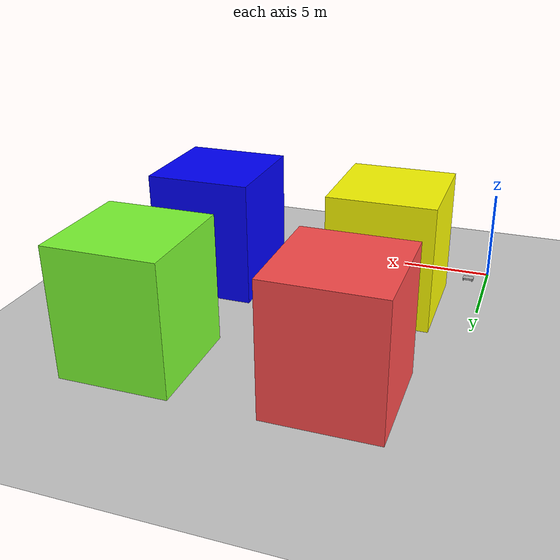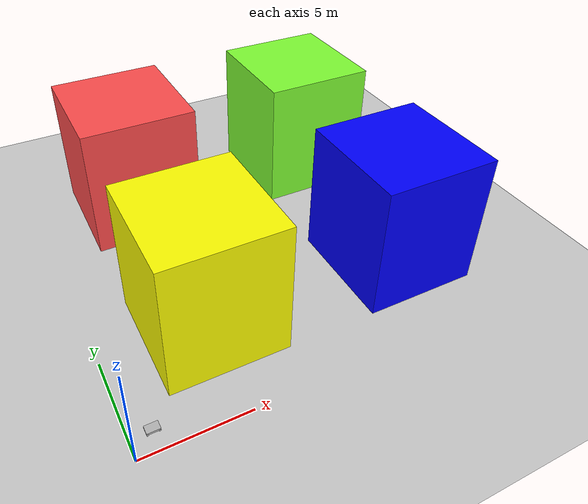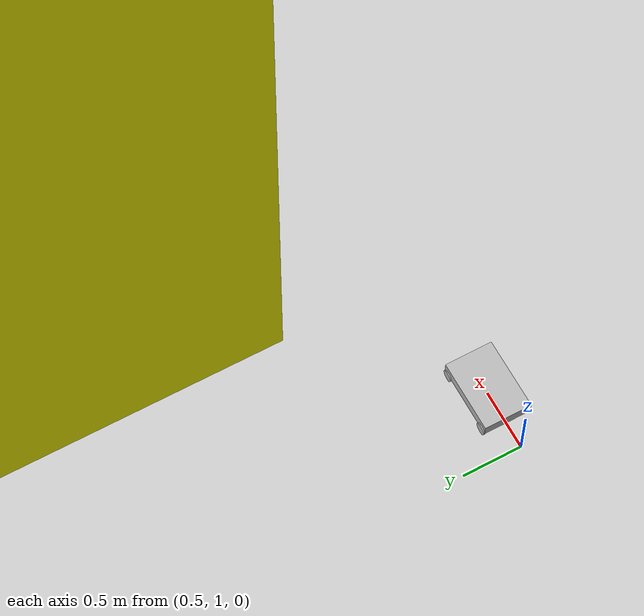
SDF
<sdf version="1.7">
 <world name="default">
  <light name="sun" type="directional">
   <pose>0 0 10 0 -0 0</pose>
   <diffuse>0.8 0.8 0.8 1</diffuse>
   <specular>0.2 0.2 0.2 1</specular>
   <attenuation>
    <range>1000</range>
    <constant>0.9</constant>
    <linear>0.01</linear>
    <quadratic>0.001</quadratic>
   </attenuation>
   <direction>-0.5 0.1 -0.9</direction>
   <spot><inner_angle>0</inner_angle><outer_angle>0</outer_angle><falloff>0</falloff></spot>
  </light>
  <model name="ground_plane">
   <static>1</static>
   <link name="link">
    <collision name="collision">
     <geometry><plane><normal>0 0 1</normal><size>100 100</size></plane></geometry>
     <surface>
      <contact><collide_bitmask>65535</collide_bitmask></contact>
      <friction><ode><mu>100</mu><mu2>50</mu2></ode></friction>
     </surface>
    </collision>
    <visual name="visual">
     <cast_shadows>0</cast_shadows>
     <geometry><plane><normal>0 0 1</normal><size>100 100</size></plane></geometry>
     <material>
      <script><uri>file://media/materials/scripts/gazebo.material</uri><name>Gazebo/Grey</name></script>
     </material>
    </visual>
   </link>
  </model>
  <gravity>0 0 -9.8</gravity>
  <magnetic_field>6e-06 2.3e-05 -4.2e-05</magnetic_field>
  <atmosphere type="adiabatic"/>
  <physics type="ode">
   <max_step_size>0.001</max_step_size>
   <real_time_factor>1</real_time_factor>
   <real_time_update_rate>1000</real_time_update_rate>
  </physics>
  <scene><ambient>0.4 0.4 0.4 1</ambient><background>0.7 0.7 0.7 1</background><shadows>1</shadows></scene>
  <audio><device>default</device></audio>
  <spherical_coordinates>
   <surface_model>EARTH_WGS84</surface_model>
   <latitude_deg>0</latitude_deg>
   <longitude_deg>0</longitude_deg>
   <elevation>0</elevation>
   <heading_deg>0</heading_deg>
  </spherical_coordinates>
  <model name="car_1">
   <static>0</static>
   <plugin name="diff_drivecar_1" filename="libgazebo_ros_diff_drive.so">
    <ros><namespace>car_1</namespace><remapping>cmd_vel:=cmd_vel</remapping></ros>
    <left_joint>rear_left_wheel_joint</left_joint>
    <right_joint>rear_right_wheel_joint</right_joint>
    <wheel_separation>0.4</wheel_separation>
    <wheel_diameter>0.1</wheel_diameter>
    <publish_odom>1</publish_odom>
    <publish_wheel_tf>1</publish_wheel_tf>
    <publish_odom_tf>1</publish_odom_tf>
   </plugin>
   <link name="base_link">
    <pose>0 0 0.1 0 -0 0</pose>
    <collision name="base_collision"><geometry><box><size>0.6 0.4 0.1</size></box></geometry></collision>
    <visual name="base_visual"><geometry><box><size>0.6 0.4 0.1</size></box></geometry></visual>
    <inertial>
     <inertia><ixx>1</ixx><ixy>0</ixy><ixz>0</ixz><iyy>1</iyy><iyz>0</iyz><izz>1</izz></inertia>
     <mass>1</mass>
    </inertial>
   </link>
   <link name="front_left_wheel">
    <pose>0.25 0.2 0.05 3.14159 1.57079 -1.57079</pose>
    <visual name="fl_visual">
     <geometry><cylinder><radius>0.05</radius><length>0.02</length></cylinder></geometry>
    </visual>
    <collision name="fl_collision">
     <geometry><cylinder><radius>0.05</radius><length>0.02</length></cylinder></geometry>
     <surface><friction><ode><mu>0</mu><mu2>0</mu2></ode></friction></surface>
    </collision>
    <inertial>
     <inertia><ixx>1</ixx><ixy>0</ixy><ixz>0</ixz><iyy>1</iyy><iyz>0</iyz><izz>1</izz></inertia>
     <mass>1</mass>
    </inertial>
   </link>
   <link name="front_right_wheel">
    <pose>0.25 -0.2 0.05 3.14159 1.57079 -1.57079</pose>
    <visual name="fr_visual">
     <geometry><cylinder><radius>0.05</radius><length>0.02</length></cylinder></geometry>
    </visual>
    <collision name="fr_collision">
     <geometry><cylinder><radius>0.05</radius><length>0.02</length></cylinder></geometry>
     <surface><friction><ode><mu>0</mu><mu2>0</mu2></ode></friction></surface>
    </collision>
    <inertial>
     <inertia><ixx>1</ixx><ixy>0</ixy><ixz>0</ixz><iyy>1</iyy><iyz>0</iyz><izz>1</izz></inertia>
     <mass>1</mass>
    </inertial>
   </link>
   <link name="rear_left_wheel">
    <pose>-0.25 0.2 0.05 3.14159 1.57079 -1.57079</pose>
    <visual name="rl_visual">
     <geometry><cylinder><radius>0.05</radius><length>0.02</length></cylinder></geometry>
    </visual>
    <collision name="rl_collision">
     <geometry><cylinder><radius>0.05</radius><length>0.02</length></cylinder></geometry>
     <surface><friction><ode><mu>2</mu><mu2>2</mu2></ode></friction></surface>
    </collision>
    <inertial>
     <inertia><ixx>1</ixx><ixy>0</ixy><ixz>0</ixz><iyy>1</iyy><iyz>0</iyz><izz>1</izz></inertia>
     <mass>1</mass>
    </inertial>
   </link>
   <link name="rear_right_wheel">
    <pose>-0.25 -0.2 0.05 3.14159 1.57079 -1.57079</pose>
    <visual name="rr_visual">
     <geometry><cylinder><radius>0.05</radius><length>0.02</length></cylinder></geometry>
    </visual>
    <collision name="rr_collision">
     <geometry><cylinder><radius>0.05</radius><length>0.02</length></cylinder></geometry>
     <surface><friction><ode><mu>2</mu><mu2>2</mu2></ode></friction></surface>
    </collision>
    <inertial>
     <inertia><ixx>1</ixx><ixy>0</ixy><ixz>0</ixz><iyy>1</iyy><iyz>0</iyz><izz>1</izz></inertia>
     <mass>1</mass>
    </inertial>
   </link>
   <joint name="front_left_wheel_joint" type="fixed">
    <parent>base_link</parent>
    <child>front_left_wheel</child>
    <axis><xyz>0 0 1</xyz><limit><lower>-1e+16</lower><upper>1e+16</upper></limit></axis>
   </joint>
   <joint name="front_right_wheel_joint" type="fixed">
    <parent>base_link</parent>
    <child>front_right_wheel</child>
    <axis><xyz>0 0 1</xyz><limit><lower>-1e+16</lower><upper>1e+16</upper></limit></axis>
   </joint>
   <joint name="rear_left_wheel_joint" type="revolute">
    <parent>base_link</parent>
    <child>rear_left_wheel</child>
    <axis>
     <xyz>0 0 1</xyz>
     <limit><lower>-1e+16</lower><upper>1e+16</upper></limit>
     <dynamics><spring_reference>0</spring_reference><spring_stiffness>0</spring_stiffness></dynamics>
    </axis>
   </joint>
   <joint name="rear_right_wheel_joint" type="revolute">
    <parent>base_link</parent>
    <child>rear_right_wheel</child>
    <axis>
     <xyz>0 0 1</xyz>
     <limit><lower>-1e+16</lower><upper>1e+16</upper></limit>
     <dynamics><spring_reference>0</spring_reference><spring_stiffness>0</spring_stiffness></dynamics>
    </axis>
   </joint>
   <pose>1.00176 0.999876 -1e-06 4e-06 -0 9.3e-05</pose>
  </model>
  <model name="Predio_Amarelo">
   <link name="link_1">
    <inertial>
     <mass>227.197</mass>
     <inertia><ixx>1531.04</ixx><ixy>0</ixy><ixz>0</ixz><iyy>1495.61</iyy><iyz>0</iyz><izz>1259.84</izz></inertia>
    </inertial>
    <visual name="visual">
     <geometry><box><size>5.6864 5.84865 6.83074</size></box></geometry>
     <material>
      <lighting>1</lighting>
      <script><uri>file://media/materials/scripts/gazebo.material</uri><name>Gazebo/Grey</name></script>
      <shader type="pixel"><normal_map>__default__</normal_map></shader>
      <ambient>1 1 0 0</ambient>
      <diffuse>0.7 0.7 0.7 1</diffuse>
      <specular>0.01 0.01 0.01 1</specular>
      <emissive>0 0 0 1</emissive>
     </material>
    </visual>
    <collision name="collision">
     <geometry><box><size>5.6864 5.84865 6.83074</size></box></geometry>
     <surface>
      <friction>
       <ode><mu>1</mu><mu2>1</mu2><fdir1>0 0 0</fdir1><slip1>0</slip1><slip2>0</slip2></ode>
       <torsional>
        <coefficient>1</coefficient>
        <patch_radius>0</patch_radius>
        <surface_radius>0</surface_radius>
        <use_patch_radius>1</use_patch_radius>
        <ode><slip>0</slip></ode>
       </torsional>
      </friction>
      <bounce><restitution_coefficient>0</restitution_coefficient><threshold>1e+06</threshold></bounce>
      <contact>
       <collide_without_contact>0</collide_without_contact>
       <collide_without_contact_bitmask>1</collide_without_contact_bitmask>
       <collide_bitmask>1</collide_bitmask>
       <ode>
        <soft_cfm>0</soft_cfm>
        <soft_erp>0.2</soft_erp>
        <kp>1e+13</kp>
        <kd>1</kd>
        <max_vel>0.01</max_vel>
        <min_depth>0</min_depth>
       </ode>
       <bullet>
        <split_impulse>1</split_impulse>
        <split_impulse_penetration_threshold>-0.01</split_impulse_penetration_threshold>
        <soft_cfm>0</soft_cfm>
        <soft_erp>0.2</soft_erp>
        <kp>1e+13</kp>
        <kd>1</kd>
       </bullet>
      </contact>
     </surface>
    </collision>
   </link>
   <static>0</static>
   <pose>4.97606 5.07498 3.41537 0 -0 0</pose>
  </model>
  <model name="Predio_Azul">
   <link name="link_1">
    <inertial>
     <mass>227.197</mass>
     <inertia><ixx>1531.04</ixx><ixy>0</ixy><ixz>0</ixz><iyy>1495.61</iyy><iyz>0</iyz><izz>1259.84</izz></inertia>
    </inertial>
    <visual name="visual">
     <geometry><box><size>5.6864 5.84865 6.83074</size></box></geometry>
     <material>
      <lighting>1</lighting>
      <script><uri>file://media/materials/scripts/gazebo.material</uri><name>Gazebo/Grey</name></script>
      <shader type="pixel"><normal_map>__default__</normal_map></shader>
      <ambient>0 0 1 0</ambient>
      <diffuse>0.7 0.7 0.7 1</diffuse>
      <specular>0.01 0.01 0.01 1</specular>
      <emissive>0 0 0 1</emissive>
     </material>
    </visual>
    <collision name="collision">
     <geometry><box><size>5.6864 5.84865 6.83074</size></box></geometry>
     <surface>
      <friction>
       <ode><mu>1</mu><mu2>1</mu2><fdir1>0 0 0</fdir1><slip1>0</slip1><slip2>0</slip2></ode>
       <torsional>
        <coefficient>1</coefficient>
        <patch_radius>0</patch_radius>
        <surface_radius>0</surface_radius>
        <use_patch_radius>1</use_patch_radius>
        <ode><slip>0</slip></ode>
       </torsional>
      </friction>
      <bounce><restitution_coefficient>0</restitution_coefficient><threshold>1e+06</threshold></bounce>
      <contact>
       <collide_without_contact>0</collide_without_contact>
       <collide_without_contact_bitmask>1</collide_without_contact_bitmask>
       <collide_bitmask>1</collide_bitmask>
       <ode>
        <soft_cfm>0</soft_cfm>
        <soft_erp>0.2</soft_erp>
        <kp>1e+13</kp>
        <kd>1</kd>
        <max_vel>0.01</max_vel>
        <min_depth>0</min_depth>
       </ode>
       <bullet>
        <split_impulse>1</split_impulse>
        <split_impulse_penetration_threshold>-0.01</split_impulse_penetration_threshold>
        <soft_cfm>0</soft_cfm>
        <soft_erp>0.2</soft_erp>
        <kp>1e+13</kp>
        <kd>1</kd>
       </bullet>
      </contact>
     </surface>
    </collision>
   </link>
   <static>0</static>
   <pose>15.0273 5.05147 3.41537 0 -0 0</pose>
  </model>
  <model name="Predio_Verde">
   <link name="link_1">
    <inertial>
     <mass>227.197</mass>
     <inertia><ixx>1531.04</ixx><ixy>0</ixy><ixz>0</ixz><iyy>1495.61</iyy><iyz>0</iyz><izz>1259.84</izz></inertia>
    </inertial>
    <visual name="visual">
     <geometry><box><size>5.6864 5.84865 6.83074</size></box></geometry>
     <material>
      <lighting>1</lighting>
      <script><uri>file://media/materials/scripts/gazebo.material</uri><name>Gazebo/Grey</name></script>
      <shader type="pixel"><normal_map>__default__</normal_map></shader>
      <ambient>0.5 1 0.2 0</ambient>
      <diffuse>0.7 0.7 0.7 1</diffuse>
      <specular>0.01 0.01 0.01 1</specular>
      <emissive>0 0 0 1</emissive>
     </material>
    </visual>
    <collision name="collision">
     <geometry><box><size>5.6864 5.84865 6.83074</size></box></geometry>
     <surface>
      <friction>
       <ode><mu>1</mu><mu2>1</mu2><fdir1>0 0 0</fdir1><slip1>0</slip1><slip2>0</slip2></ode>
       <torsional>
        <coefficient>1</coefficient>
        <patch_radius>0</patch_radius>
        <surface_radius>0</surface_radius>
        <use_patch_radius>1</use_patch_radius>
        <ode><slip>0</slip></ode>
       </torsional>
      </friction>
      <bounce><restitution_coefficient>0</restitution_coefficient><threshold>1e+06</threshold></bounce>
      <contact>
       <collide_without_contact>0</collide_without_contact>
       <collide_without_contact_bitmask>1</collide_without_contact_bitmask>
       <collide_bitmask>1</collide_bitmask>
       <ode>
        <soft_cfm>0</soft_cfm>
        <soft_erp>0.2</soft_erp>
        <kp>1e+13</kp>
        <kd>1</kd>
        <max_vel>0.01</max_vel>
        <min_depth>0</min_depth>
       </ode>
       <bullet>
        <split_impulse>1</split_impulse>
        <split_impulse_penetration_threshold>-0.01</split_impulse_penetration_threshold>
        <soft_cfm>0</soft_cfm>
        <soft_erp>0.2</soft_erp>
        <kp>1e+13</kp>
        <kd>1</kd>
       </bullet>
      </contact>
     </surface>
    </collision>
   </link>
   <static>0</static>
   <pose>14.9913 14.9426 3.41537 0 -0 0</pose>
  </model>
  <model name="Predio_Vermelho">
   <link name="link_1">
    <inertial>
     <mass>227.197</mass>
     <inertia><ixx>1531.04</ixx><ixy>0</ixy><ixz>0</ixz><iyy>1495.61</iyy><iyz>0</iyz><izz>1259.84</izz></inertia>
    </inertial>
    <visual name="visual">
     <geometry><box><size>5.6864 5.84865 6.83074</size></box></geometry>
     <material>
      <lighting>1</lighting>
      <script><uri>file://media/materials/scripts/gazebo.material</uri><name>Gazebo/Grey</name></script>
      <shader type="pixel"><normal_map>__default__</normal_map></shader>
      <ambient>1 0.3 0.3 1</ambient>
      <diffuse>0.7 0.7 0.7 1</diffuse>
      <specular>0.01 0.01 0.01 1</specular>
      <emissive>0 0 0 1</emissive>
     </material>
    </visual>
    <collision name="collision">
     <geometry><box><size>5.6864 5.84865 6.83074</size></box></geometry>
     <surface>
      <friction>
       <ode><mu>1</mu><mu2>1</mu2><fdir1>0 0 0</fdir1><slip1>0</slip1><slip2>0</slip2></ode>
       <torsional>
        <coefficient>1</coefficient>
        <patch_radius>0</patch_radius>
        <surface_radius>0</surface_radius>
        <use_patch_radius>1</use_patch_radius>
        <ode><slip>0</slip></ode>
       </torsional>
      </friction>
      <bounce><restitution_coefficient>0</restitution_coefficient><threshold>1e+06</threshold></bounce>
      <contact>
       <collide_without_contact>0</collide_without_contact>
       <collide_without_contact_bitmask>1</collide_without_contact_bitmask>
       <collide_bitmask>1</collide_bitmask>
       <ode>
        <soft_cfm>0</soft_cfm>
        <soft_erp>0.2</soft_erp>
        <kp>1e+13</kp>
        <kd>1</kd>
        <max_vel>0.01</max_vel>
        <min_depth>0</min_depth>
       </ode>
       <bullet>
        <split_impulse>1</split_impulse>
        <split_impulse_penetration_threshold>-0.01</split_impulse_penetration_threshold>
        <soft_cfm>0</soft_cfm>
        <soft_erp>0.2</soft_erp>
        <kp>1e+13</kp>
        <kd>1</kd>
       </bullet>
      </contact>
     </surface>
    </collision>
   </link>
   <static>0</static>
   <pose>4.95963 14.9865 3.41537 0 -0 0</pose>
  </model>
 </world>
</sdf>
